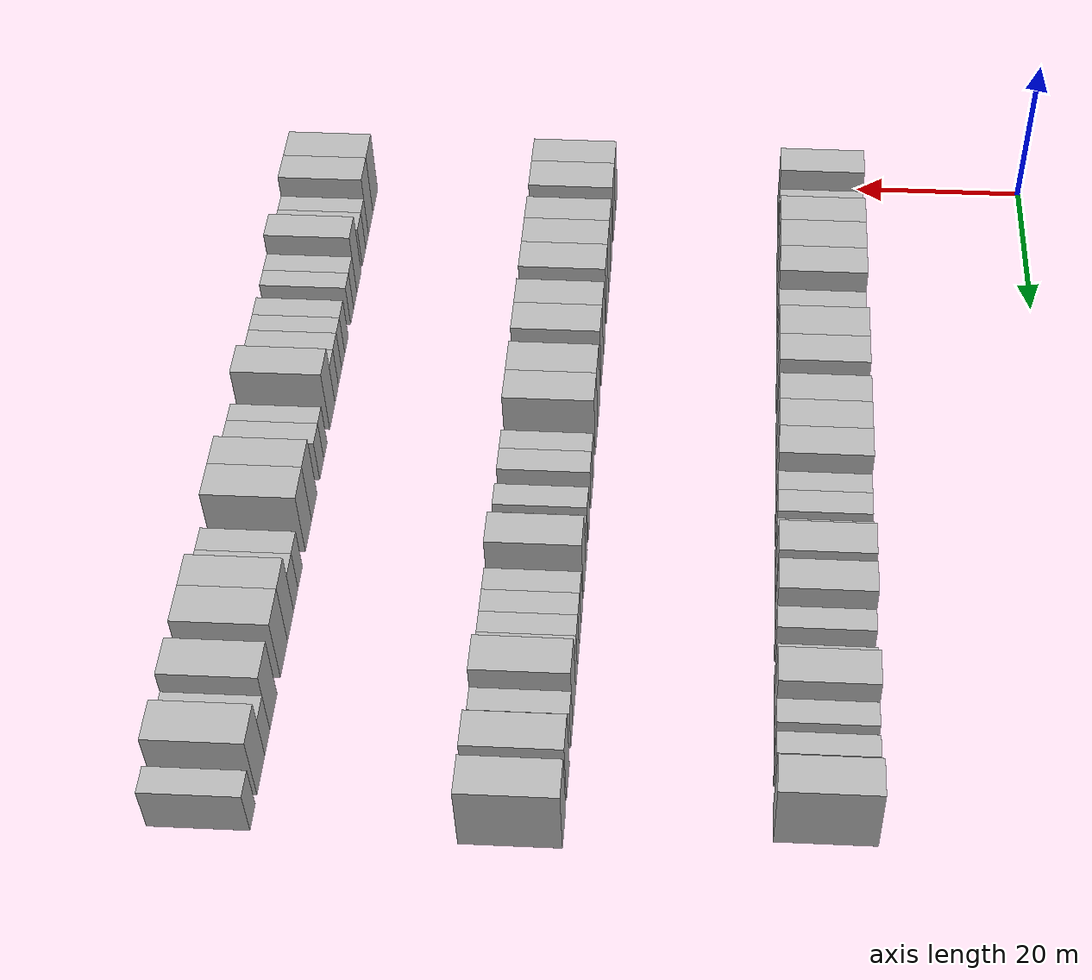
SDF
<sdf version="1.6">
 <world name="default">
  <model name="building_77">
   <static>1</static>
   <pose>25.0000 5.0600 0 0.000000 0.000000 0.000000</pose>
   <link name="link">
    <pose>0 0 4.50 0 0 0</pose>
    <collision name="collision"><geometry><box><size>10.0000 4.0116 9.0000</size></box></geometry></collision>
    <visual name="visual">
     <cast_shadows>0</cast_shadows>
     <geometry><box><size>10.0000 4.0116 9.0000</size></box></geometry>
     <material>
      <script>
       <uri>model://HANNAS_wall/materials/scripts</uri>
       <uri>model://HANNAS_wall/materials/textures</uri>
       <name>vrc/HANNAS_wall</name>
      </script>
     </material>
    </visual>
   </link>
  </model>
  <model name="building_78">
   <static>1</static>
   <pose>25.0000 8.3149 0 0.000000 0.000000 0.000000</pose>
   <link name="link">
    <pose>0 0 3.00 0 0 0</pose>
    <collision name="collision"><geometry><box><size>10.0000 2.4982 6.0000</size></box></geometry></collision>
    <visual name="visual">
     <cast_shadows>0</cast_shadows>
     <geometry><box><size>10.0000 2.4982 6.0000</size></box></geometry>
     <material>
      <script>
       <uri>model://HANNAS_wall/materials/scripts</uri>
       <uri>model://HANNAS_wall/materials/textures</uri>
       <name>vrc/HANNAS_wall</name>
      </script>
     </material>
    </visual>
   </link>
  </model>
  <model name="building_79">
   <static>1</static>
   <pose>25.0000 13.5983 0 0.000000 0.000000 0.000000</pose>
   <link name="link">
    <pose>0 0 4.50 0 0 0</pose>
    <collision name="collision"><geometry><box><size>10.0000 4.0687 9.0000</size></box></geometry></collision>
    <visual name="visual">
     <cast_shadows>0</cast_shadows>
     <geometry><box><size>10.0000 4.0687 9.0000</size></box></geometry>
     <material>
      <script>
       <uri>model://HANNAS_wall/materials/scripts</uri>
       <uri>model://HANNAS_wall/materials/textures</uri>
       <name>vrc/HANNAS_wall</name>
      </script>
     </material>
    </visual>
   </link>
  </model>
  <model name="building_80">
   <static>1</static>
   <pose>25.0000 17.8358 0 0.000000 0.000000 0.000000</pose>
   <link name="link">
    <pose>0 0 4.50 0 0 0</pose>
    <collision name="collision"><geometry><box><size>10.0000 4.4063 9.0000</size></box></geometry></collision>
    <visual name="visual">
     <cast_shadows>0</cast_shadows>
     <geometry><box><size>10.0000 4.4063 9.0000</size></box></geometry>
     <material>
      <script>
       <uri>model://HANNAS_wall/materials/scripts</uri>
       <uri>model://HANNAS_wall/materials/textures</uri>
       <name>vrc/HANNAS_wall</name>
      </script>
     </material>
    </visual>
   </link>
  </model>
  <model name="building_81">
   <static>1</static>
   <pose>25.0000 22.1220 0 0.000000 0.000000 0.000000</pose>
   <link name="link">
    <pose>0 0 4.50 0 0 0</pose>
    <collision name="collision"><geometry><box><size>10.0000 4.1660 9.0000</size></box></geometry></collision>
    <visual name="visual">
     <cast_shadows>0</cast_shadows>
     <geometry><box><size>10.0000 4.1660 9.0000</size></box></geometry>
     <material>
      <script>
       <uri>model://HANNAS_wall/materials/scripts</uri>
       <uri>model://HANNAS_wall/materials/textures</uri>
       <name>vrc/HANNAS_wall</name>
      </script>
     </material>
    </visual>
   </link>
  </model>
  <model name="building_82">
   <static>1</static>
   <pose>25.0000 25.5349 0 0.000000 0.000000 0.000000</pose>
   <link name="link">
    <pose>0 0 3.00 0 0 0</pose>
    <collision name="collision"><geometry><box><size>10.0000 2.6600 6.0000</size></box></geometry></collision>
    <visual name="visual">
     <cast_shadows>0</cast_shadows>
     <geometry><box><size>10.0000 2.6600 6.0000</size></box></geometry>
     <material>
      <script>
       <uri>model://HANNAS_wall/materials/scripts</uri>
       <uri>model://HANNAS_wall/materials/textures</uri>
       <name>vrc/HANNAS_wall</name>
      </script>
     </material>
    </visual>
   </link>
  </model>
  <model name="building_83">
   <static>1</static>
   <pose>25.0000 28.3083 0 0.000000 0.000000 0.000000</pose>
   <link name="link">
    <pose>0 0 3.00 0 0 0</pose>
    <collision name="collision"><geometry><box><size>10.0000 2.8868 6.0000</size></box></geometry></collision>
    <visual name="visual">
     <cast_shadows>0</cast_shadows>
     <geometry><box><size>10.0000 2.8868 6.0000</size></box></geometry>
     <material>
      <script>
       <uri>model://HANNAS_wall/materials/scripts</uri>
       <uri>model://HANNAS_wall/materials/textures</uri>
       <name>vrc/HANNAS_wall</name>
      </script>
     </material>
    </visual>
   </link>
  </model>
  <model name="building_84">
   <static>1</static>
   <pose>25.0000 31.9678 0 0.000000 0.000000 0.000000</pose>
   <link name="link">
    <pose>0 0 4.50 0 0 0</pose>
    <collision name="collision"><geometry><box><size>10.0000 4.4322 9.0000</size></box></geometry></collision>
    <visual name="visual">
     <cast_shadows>0</cast_shadows>
     <geometry><box><size>10.0000 4.4322 9.0000</size></box></geometry>
     <material>
      <script>
       <uri>model://HANNAS_wall/materials/scripts</uri>
       <uri>model://HANNAS_wall/materials/textures</uri>
       <name>vrc/HANNAS_wall</name>
      </script>
     </material>
    </visual>
   </link>
  </model>
  <model name="building_85">
   <static>1</static>
   <pose>25.0000 36.1779 0 0.000000 0.000000 0.000000</pose>
   <link name="link">
    <pose>0 0 4.50 0 0 0</pose>
    <collision name="collision"><geometry><box><size>10.0000 3.9880 9.0000</size></box></geometry></collision>
    <visual name="visual">
     <cast_shadows>0</cast_shadows>
     <geometry><box><size>10.0000 3.9880 9.0000</size></box></geometry>
     <material>
      <script>
       <uri>model://HANNAS_wall/materials/scripts</uri>
       <uri>model://HANNAS_wall/materials/textures</uri>
       <name>vrc/HANNAS_wall</name>
      </script>
     </material>
    </visual>
   </link>
  </model>
  <model name="building_86">
   <static>1</static>
   <pose>25.0000 42.0599 0 0.000000 0.000000 0.000000</pose>
   <link name="link">
    <pose>0 0 4.50 0 0 0</pose>
    <collision name="collision"><geometry><box><size>10.0000 3.7759 9.0000</size></box></geometry></collision>
    <visual name="visual">
     <cast_shadows>0</cast_shadows>
     <geometry><box><size>10.0000 3.7759 9.0000</size></box></geometry>
     <material>
      <script>
       <uri>model://HANNAS_wall/materials/scripts</uri>
       <uri>model://HANNAS_wall/materials/textures</uri>
       <name>vrc/HANNAS_wall</name>
      </script>
     </material>
    </visual>
   </link>
  </model>
  <model name="building_87">
   <static>1</static>
   <pose>25.0000 45.8835 0 0.000000 0.000000 0.000000</pose>
   <link name="link">
    <pose>0 0 4.50 0 0 0</pose>
    <collision name="collision"><geometry><box><size>10.0000 3.8713 9.0000</size></box></geometry></collision>
    <visual name="visual">
     <cast_shadows>0</cast_shadows>
     <geometry><box><size>10.0000 3.8713 9.0000</size></box></geometry>
     <material>
      <script>
       <uri>model://HANNAS_wall/materials/scripts</uri>
       <uri>model://HANNAS_wall/materials/textures</uri>
       <name>vrc/HANNAS_wall</name>
      </script>
     </material>
    </visual>
   </link>
  </model>
  <model name="building_88">
   <static>1</static>
   <pose>25.0000 49.7420 0 0.000000 0.000000 0.000000</pose>
   <link name="link">
    <pose>0 0 4.50 0 0 0</pose>
    <collision name="collision"><geometry><box><size>10.0000 3.8457 9.0000</size></box></geometry></collision>
    <visual name="visual">
     <cast_shadows>0</cast_shadows>
     <geometry><box><size>10.0000 3.8457 9.0000</size></box></geometry>
     <material>
      <script>
       <uri>model://HANNAS_wall/materials/scripts</uri>
       <uri>model://HANNAS_wall/materials/textures</uri>
       <name>vrc/HANNAS_wall</name>
      </script>
     </material>
    </visual>
   </link>
  </model>
  <model name="building_89">
   <static>1</static>
   <pose>25.0000 52.9456 0 0.000000 0.000000 0.000000</pose>
   <link name="link">
    <pose>0 0 3.00 0 0 0</pose>
    <collision name="collision"><geometry><box><size>10.0000 2.5616 6.0000</size></box></geometry></collision>
    <visual name="visual">
     <cast_shadows>0</cast_shadows>
     <geometry><box><size>10.0000 2.5616 6.0000</size></box></geometry>
     <material>
      <script>
       <uri>model://HANNAS_wall/materials/scripts</uri>
       <uri>model://HANNAS_wall/materials/textures</uri>
       <name>vrc/HANNAS_wall</name>
      </script>
     </material>
    </visual>
   </link>
  </model>
  <model name="building_90">
   <static>1</static>
   <pose>25.0000 55.6881 0 0.000000 0.000000 0.000000</pose>
   <link name="link">
    <pose>0 0 3.00 0 0 0</pose>
    <collision name="collision"><geometry><box><size>10.0000 2.9235 6.0000</size></box></geometry></collision>
    <visual name="visual">
     <cast_shadows>0</cast_shadows>
     <geometry><box><size>10.0000 2.9235 6.0000</size></box></geometry>
     <material>
      <script>
       <uri>model://HANNAS_wall/materials/scripts</uri>
       <uri>model://HANNAS_wall/materials/textures</uri>
       <name>vrc/HANNAS_wall</name>
      </script>
     </material>
    </visual>
   </link>
  </model>
  <model name="building_91">
   <static>1</static>
   <pose>25.0000 59.4676 0 0.000000 0.000000 0.000000</pose>
   <link name="link">
    <pose>0 0 3.00 0 0 0</pose>
    <collision name="collision"><geometry><box><size>10.0000 2.6355 6.0000</size></box></geometry></collision>
    <visual name="visual">
     <cast_shadows>0</cast_shadows>
     <geometry><box><size>10.0000 2.6355 6.0000</size></box></geometry>
     <material>
      <script>
       <uri>model://HANNAS_wall/materials/scripts</uri>
       <uri>model://HANNAS_wall/materials/textures</uri>
       <name>vrc/HANNAS_wall</name>
      </script>
     </material>
    </visual>
   </link>
  </model>
  <model name="building_92">
   <static>1</static>
   <pose>25.0000 62.7281 0 0.000000 0.000000 0.000000</pose>
   <link name="link">
    <pose>0 0 4.50 0 0 0</pose>
    <collision name="collision"><geometry><box><size>10.0000 3.8855 9.0000</size></box></geometry></collision>
    <visual name="visual">
     <cast_shadows>0</cast_shadows>
     <geometry><box><size>10.0000 3.8855 9.0000</size></box></geometry>
     <material>
      <script>
       <uri>model://HANNAS_wall/materials/scripts</uri>
       <uri>model://HANNAS_wall/materials/textures</uri>
       <name>vrc/HANNAS_wall</name>
      </script>
     </material>
    </visual>
   </link>
  </model>
  <model name="building_93">
   <static>1</static>
   <pose>25.0000 67.5539 0 0.000000 0.000000 0.000000</pose>
   <link name="link">
    <pose>0 0 4.50 0 0 0</pose>
    <collision name="collision"><geometry><box><size>10.0000 3.7661 9.0000</size></box></geometry></collision>
    <visual name="visual">
     <cast_shadows>0</cast_shadows>
     <geometry><box><size>10.0000 3.7661 9.0000</size></box></geometry>
     <material>
      <script>
       <uri>model://HANNAS_wall/materials/scripts</uri>
       <uri>model://HANNAS_wall/materials/textures</uri>
       <name>vrc/HANNAS_wall</name>
      </script>
     </material>
    </visual>
   </link>
  </model>
  <model name="building_94">
   <static>1</static>
   <pose>25.0000 70.7635 0 0.000000 0.000000 0.000000</pose>
   <link name="link">
    <pose>0 0 3.00 0 0 0</pose>
    <collision name="collision"><geometry><box><size>10.0000 2.6532 6.0000</size></box></geometry></collision>
    <visual name="visual">
     <cast_shadows>0</cast_shadows>
     <geometry><box><size>10.0000 2.6532 6.0000</size></box></geometry>
     <material>
      <script>
       <uri>model://HANNAS_wall/materials/scripts</uri>
       <uri>model://HANNAS_wall/materials/textures</uri>
       <name>vrc/HANNAS_wall</name>
      </script>
     </material>
    </visual>
   </link>
  </model>
  <model name="building_95">
   <static>1</static>
   <pose>25.0000 75.3304 0 0.000000 0.000000 0.000000</pose>
   <link name="link">
    <pose>0 0 3.00 0 0 0</pose>
    <collision name="collision"><geometry><box><size>10.0000 2.4804 6.0000</size></box></geometry></collision>
    <visual name="visual">
     <cast_shadows>0</cast_shadows>
     <geometry><box><size>10.0000 2.4804 6.0000</size></box></geometry>
     <material>
      <script>
       <uri>model://HANNAS_wall/materials/scripts</uri>
       <uri>model://HANNAS_wall/materials/textures</uri>
       <name>vrc/HANNAS_wall</name>
      </script>
     </material>
    </visual>
   </link>
  </model>
  <model name="building_96">
   <static>1</static>
   <pose>25.0000 78.5699 0 0.000000 0.000000 0.000000</pose>
   <link name="link">
    <pose>0 0 4.50 0 0 0</pose>
    <collision name="collision"><geometry><box><size>10.0000 3.9987 9.0000</size></box></geometry></collision>
    <visual name="visual">
     <cast_shadows>0</cast_shadows>
     <geometry><box><size>10.0000 3.9987 9.0000</size></box></geometry>
     <material>
      <script>
       <uri>model://HANNAS_wall/materials/scripts</uri>
       <uri>model://HANNAS_wall/materials/textures</uri>
       <name>vrc/HANNAS_wall</name>
      </script>
     </material>
    </visual>
   </link>
  </model>
  <model name="building_97">
   <static>1</static>
   <pose>25.0000 81.9426 0 0.000000 0.000000 0.000000</pose>
   <link name="link">
    <pose>0 0 3.00 0 0 0</pose>
    <collision name="collision"><geometry><box><size>10.0000 2.7467 6.0000</size></box></geometry></collision>
    <visual name="visual">
     <cast_shadows>0</cast_shadows>
     <geometry><box><size>10.0000 2.7467 6.0000</size></box></geometry>
     <material>
      <script>
       <uri>model://HANNAS_wall/materials/scripts</uri>
       <uri>model://HANNAS_wall/materials/textures</uri>
       <name>vrc/HANNAS_wall</name>
      </script>
     </material>
    </visual>
   </link>
  </model>
  <model name="building_98">
   <static>1</static>
   <pose>25.0000 85.5604 0 0.000000 0.000000 0.000000</pose>
   <link name="link">
    <pose>0 0 3.00 0 0 0</pose>
    <collision name="collision"><geometry><box><size>10.0000 2.4888 6.0000</size></box></geometry></collision>
    <visual name="visual">
     <cast_shadows>0</cast_shadows>
     <geometry><box><size>10.0000 2.4888 6.0000</size></box></geometry>
     <material>
      <script>
       <uri>model://HANNAS_wall/materials/scripts</uri>
       <uri>model://HANNAS_wall/materials/textures</uri>
       <name>vrc/HANNAS_wall</name>
      </script>
     </material>
    </visual>
   </link>
  </model>
  <model name="building_99">
   <static>1</static>
   <pose>25.0000 90.8508 0 0.000000 0.000000 0.000000</pose>
   <link name="link">
    <pose>0 0 4.50 0 0 0</pose>
    <collision name="collision"><geometry><box><size>10.0000 4.0921 9.0000</size></box></geometry></collision>
    <visual name="visual">
     <cast_shadows>0</cast_shadows>
     <geometry><box><size>10.0000 4.0921 9.0000</size></box></geometry>
     <material>
      <script>
       <uri>model://HANNAS_wall/materials/scripts</uri>
       <uri>model://HANNAS_wall/materials/textures</uri>
       <name>vrc/HANNAS_wall</name>
      </script>
     </material>
    </visual>
   </link>
  </model>
  <model name="building_206">
   <static>1</static>
   <pose>55.0000 4.7831 0 0.000000 0.000000 0.000000</pose>
   <link name="link">
    <pose>0 0 4.50 0 0 0</pose>
    <collision name="collision"><geometry><box><size>10.0000 3.9610 9.0000</size></box></geometry></collision>
    <visual name="visual">
     <cast_shadows>0</cast_shadows>
     <geometry><box><size>10.0000 3.9610 9.0000</size></box></geometry>
     <material>
      <script>
       <uri>model://HANNAS_wall/materials/scripts</uri>
       <uri>model://HANNAS_wall/materials/textures</uri>
       <name>vrc/HANNAS_wall</name>
      </script>
     </material>
    </visual>
   </link>
  </model>
  <model name="building_207">
   <static>1</static>
   <pose>55.0000 8.9748 0 0.000000 0.000000 0.000000</pose>
   <link name="link">
    <pose>0 0 4.50 0 0 0</pose>
    <collision name="collision"><geometry><box><size>10.0000 4.4224 9.0000</size></box></geometry></collision>
    <visual name="visual">
     <cast_shadows>0</cast_shadows>
     <geometry><box><size>10.0000 4.4224 9.0000</size></box></geometry>
     <material>
      <script>
       <uri>model://HANNAS_wall/materials/scripts</uri>
       <uri>model://HANNAS_wall/materials/textures</uri>
       <name>vrc/HANNAS_wall</name>
      </script>
     </material>
    </visual>
   </link>
  </model>
  <model name="building_208">
   <static>1</static>
   <pose>55.0000 15.0215 0 0.000000 0.000000 0.000000</pose>
   <link name="link">
    <pose>0 0 4.50 0 0 0</pose>
    <collision name="collision"><geometry><box><size>10.0000 3.6709 9.0000</size></box></geometry></collision>
    <visual name="visual">
     <cast_shadows>0</cast_shadows>
     <geometry><box><size>10.0000 3.6709 9.0000</size></box></geometry>
     <material>
      <script>
       <uri>model://HANNAS_wall/materials/scripts</uri>
       <uri>model://HANNAS_wall/materials/textures</uri>
       <name>vrc/HANNAS_wall</name>
      </script>
     </material>
    </visual>
   </link>
  </model>
  <model name="building_209">
   <static>1</static>
   <pose>55.0000 18.8750 0 0.000000 0.000000 0.000000</pose>
   <link name="link">
    <pose>0 0 4.50 0 0 0</pose>
    <collision name="collision"><geometry><box><size>10.0000 4.0361 9.0000</size></box></geometry></collision>
    <visual name="visual">
     <cast_shadows>0</cast_shadows>
     <geometry><box><size>10.0000 4.0361 9.0000</size></box></geometry>
     <material>
      <script>
       <uri>model://HANNAS_wall/materials/scripts</uri>
       <uri>model://HANNAS_wall/materials/textures</uri>
       <name>vrc/HANNAS_wall</name>
      </script>
     </material>
    </visual>
   </link>
  </model>
  <model name="building_210">
   <static>1</static>
   <pose>55.0000 22.9691 0 0.000000 0.000000 0.000000</pose>
   <link name="link">
    <pose>0 0 4.50 0 0 0</pose>
    <collision name="collision"><geometry><box><size>10.0000 4.1520 9.0000</size></box></geometry></collision>
    <visual name="visual">
     <cast_shadows>0</cast_shadows>
     <geometry><box><size>10.0000 4.1520 9.0000</size></box></geometry>
     <material>
      <script>
       <uri>model://HANNAS_wall/materials/scripts</uri>
       <uri>model://HANNAS_wall/materials/textures</uri>
       <name>vrc/HANNAS_wall</name>
      </script>
     </material>
    </visual>
   </link>
  </model>
  <model name="building_211">
   <static>1</static>
   <pose>55.0000 28.9196 0 0.000000 0.000000 0.000000</pose>
   <link name="link">
    <pose>0 0 4.50 0 0 0</pose>
    <collision name="collision"><geometry><box><size>10.0000 3.7491 9.0000</size></box></geometry></collision>
    <visual name="visual">
     <cast_shadows>0</cast_shadows>
     <geometry><box><size>10.0000 3.7491 9.0000</size></box></geometry>
     <material>
      <script>
       <uri>model://HANNAS_wall/materials/scripts</uri>
       <uri>model://HANNAS_wall/materials/textures</uri>
       <name>vrc/HANNAS_wall</name>
      </script>
     </material>
    </visual>
   </link>
  </model>
  <model name="building_212">
   <static>1</static>
   <pose>55.0000 32.8560 0 0.000000 0.000000 0.000000</pose>
   <link name="link">
    <pose>0 0 4.50 0 0 0</pose>
    <collision name="collision"><geometry><box><size>10.0000 4.1237 9.0000</size></box></geometry></collision>
    <visual name="visual">
     <cast_shadows>0</cast_shadows>
     <geometry><box><size>10.0000 4.1237 9.0000</size></box></geometry>
     <material>
      <script>
       <uri>model://HANNAS_wall/materials/scripts</uri>
       <uri>model://HANNAS_wall/materials/textures</uri>
       <name>vrc/HANNAS_wall</name>
      </script>
     </material>
    </visual>
   </link>
  </model>
  <model name="building_213">
   <static>1</static>
   <pose>55.0000 39.0620 0 0.000000 0.000000 0.000000</pose>
   <link name="link">
    <pose>0 0 4.50 0 0 0</pose>
    <collision name="collision"><geometry><box><size>10.0000 4.2882 9.0000</size></box></geometry></collision>
    <visual name="visual">
     <cast_shadows>0</cast_shadows>
     <geometry><box><size>10.0000 4.2882 9.0000</size></box></geometry>
     <material>
      <script>
       <uri>model://HANNAS_wall/materials/scripts</uri>
       <uri>model://HANNAS_wall/materials/textures</uri>
       <name>vrc/HANNAS_wall</name>
      </script>
     </material>
    </visual>
   </link>
  </model>
  <model name="building_214">
   <static>1</static>
   <pose>55.0000 43.2771 0 0.000000 0.000000 0.000000</pose>
   <link name="link">
    <pose>0 0 4.50 0 0 0</pose>
    <collision name="collision"><geometry><box><size>10.0000 4.1421 9.0000</size></box></geometry></collision>
    <visual name="visual">
     <cast_shadows>0</cast_shadows>
     <geometry><box><size>10.0000 4.1421 9.0000</size></box></geometry>
     <material>
      <script>
       <uri>model://HANNAS_wall/materials/scripts</uri>
       <uri>model://HANNAS_wall/materials/textures</uri>
       <name>vrc/HANNAS_wall</name>
      </script>
     </material>
    </visual>
   </link>
  </model>
  <model name="building_215">
   <static>1</static>
   <pose>55.0000 48.6438 0 0.000000 0.000000 0.000000</pose>
   <link name="link">
    <pose>0 0 3.00 0 0 0</pose>
    <collision name="collision"><geometry><box><size>10.0000 2.5912 6.0000</size></box></geometry></collision>
    <visual name="visual">
     <cast_shadows>0</cast_shadows>
     <geometry><box><size>10.0000 2.5912 6.0000</size></box></geometry>
     <material>
      <script>
       <uri>model://HANNAS_wall/materials/scripts</uri>
       <uri>model://HANNAS_wall/materials/textures</uri>
       <name>vrc/HANNAS_wall</name>
      </script>
     </material>
    </visual>
   </link>
  </model>
  <model name="building_216">
   <static>1</static>
   <pose>55.0000 51.4256 0 0.000000 0.000000 0.000000</pose>
   <link name="link">
    <pose>0 0 3.00 0 0 0</pose>
    <collision name="collision"><geometry><box><size>10.0000 2.9724 6.0000</size></box></geometry></collision>
    <visual name="visual">
     <cast_shadows>0</cast_shadows>
     <geometry><box><size>10.0000 2.9724 6.0000</size></box></geometry>
     <material>
      <script>
       <uri>model://HANNAS_wall/materials/scripts</uri>
       <uri>model://HANNAS_wall/materials/textures</uri>
       <name>vrc/HANNAS_wall</name>
      </script>
     </material>
    </visual>
   </link>
  </model>
  <model name="building_217">
   <static>1</static>
   <pose>55.0000 56.3287 0 0.000000 0.000000 0.000000</pose>
   <link name="link">
    <pose>0 0 3.00 0 0 0</pose>
    <collision name="collision"><geometry><box><size>10.0000 2.8339 6.0000</size></box></geometry></collision>
    <visual name="visual">
     <cast_shadows>0</cast_shadows>
     <geometry><box><size>10.0000 2.8339 6.0000</size></box></geometry>
     <material>
      <script>
       <uri>model://HANNAS_wall/materials/scripts</uri>
       <uri>model://HANNAS_wall/materials/textures</uri>
       <name>vrc/HANNAS_wall</name>
      </script>
     </material>
    </visual>
   </link>
  </model>
  <model name="building_218">
   <static>1</static>
   <pose>55.0000 59.9752 0 0.000000 0.000000 0.000000</pose>
   <link name="link">
    <pose>0 0 3.00 0 0 0</pose>
    <collision name="collision"><geometry><box><size>10.0000 2.4591 6.0000</size></box></geometry></collision>
    <visual name="visual">
     <cast_shadows>0</cast_shadows>
     <geometry><box><size>10.0000 2.4591 6.0000</size></box></geometry>
     <material>
      <script>
       <uri>model://HANNAS_wall/materials/scripts</uri>
       <uri>model://HANNAS_wall/materials/textures</uri>
       <name>vrc/HANNAS_wall</name>
      </script>
     </material>
    </visual>
   </link>
  </model>
  <model name="building_219">
   <static>1</static>
   <pose>55.0000 63.1700 0 0.000000 0.000000 0.000000</pose>
   <link name="link">
    <pose>0 0 4.50 0 0 0</pose>
    <collision name="collision"><geometry><box><size>10.0000 3.9306 9.0000</size></box></geometry></collision>
    <visual name="visual">
     <cast_shadows>0</cast_shadows>
     <geometry><box><size>10.0000 3.9306 9.0000</size></box></geometry>
     <material>
      <script>
       <uri>model://HANNAS_wall/materials/scripts</uri>
       <uri>model://HANNAS_wall/materials/textures</uri>
       <name>vrc/HANNAS_wall</name>
      </script>
     </material>
    </visual>
   </link>
  </model>
  <model name="building_220">
   <static>1</static>
   <pose>55.0000 67.4924 0 0.000000 0.000000 0.000000</pose>
   <link name="link">
    <pose>0 0 3.00 0 0 0</pose>
    <collision name="collision"><geometry><box><size>10.0000 2.7140 6.0000</size></box></geometry></collision>
    <visual name="visual">
     <cast_shadows>0</cast_shadows>
     <geometry><box><size>10.0000 2.7140 6.0000</size></box></geometry>
     <material>
      <script>
       <uri>model://HANNAS_wall/materials/scripts</uri>
       <uri>model://HANNAS_wall/materials/textures</uri>
       <name>vrc/HANNAS_wall</name>
      </script>
     </material>
    </visual>
   </link>
  </model>
  <model name="building_221">
   <static>1</static>
   <pose>55.0000 70.2208 0 0.000000 0.000000 0.000000</pose>
   <link name="link">
    <pose>0 0 3.00 0 0 0</pose>
    <collision name="collision"><geometry><box><size>10.0000 2.7429 6.0000</size></box></geometry></collision>
    <visual name="visual">
     <cast_shadows>0</cast_shadows>
     <geometry><box><size>10.0000 2.7429 6.0000</size></box></geometry>
     <material>
      <script>
       <uri>model://HANNAS_wall/materials/scripts</uri>
       <uri>model://HANNAS_wall/materials/textures</uri>
       <name>vrc/HANNAS_wall</name>
      </script>
     </material>
    </visual>
   </link>
  </model>
  <model name="building_222">
   <static>1</static>
   <pose>55.0000 72.8770 0 0.000000 0.000000 0.000000</pose>
   <link name="link">
    <pose>0 0 3.00 0 0 0</pose>
    <collision name="collision"><geometry><box><size>10.0000 2.5695 6.0000</size></box></geometry></collision>
    <visual name="visual">
     <cast_shadows>0</cast_shadows>
     <geometry><box><size>10.0000 2.5695 6.0000</size></box></geometry>
     <material>
      <script>
       <uri>model://HANNAS_wall/materials/scripts</uri>
       <uri>model://HANNAS_wall/materials/textures</uri>
       <name>vrc/HANNAS_wall</name>
      </script>
     </material>
    </visual>
   </link>
  </model>
  <model name="building_223">
   <static>1</static>
   <pose>55.0000 75.4095 0 0.000000 0.000000 0.000000</pose>
   <link name="link">
    <pose>0 0 3.00 0 0 0</pose>
    <collision name="collision"><geometry><box><size>10.0000 2.4956 6.0000</size></box></geometry></collision>
    <visual name="visual">
     <cast_shadows>0</cast_shadows>
     <geometry><box><size>10.0000 2.4956 6.0000</size></box></geometry>
     <material>
      <script>
       <uri>model://HANNAS_wall/materials/scripts</uri>
       <uri>model://HANNAS_wall/materials/textures</uri>
       <name>vrc/HANNAS_wall</name>
      </script>
     </material>
    </visual>
   </link>
  </model>
  <model name="building_224">
   <static>1</static>
   <pose>55.0000 78.7159 0 0.000000 0.000000 0.000000</pose>
   <link name="link">
    <pose>0 0 4.50 0 0 0</pose>
    <collision name="collision"><geometry><box><size>10.0000 4.1172 9.0000</size></box></geometry></collision>
    <visual name="visual">
     <cast_shadows>0</cast_shadows>
     <geometry><box><size>10.0000 4.1172 9.0000</size></box></geometry>
     <material>
      <script>
       <uri>model://HANNAS_wall/materials/scripts</uri>
       <uri>model://HANNAS_wall/materials/textures</uri>
       <name>vrc/HANNAS_wall</name>
      </script>
     </material>
    </visual>
   </link>
  </model>
  <model name="building_225">
   <static>1</static>
   <pose>55.0000 82.0892 0 0.000000 0.000000 0.000000</pose>
   <link name="link">
    <pose>0 0 3.00 0 0 0</pose>
    <collision name="collision"><geometry><box><size>10.0000 2.6294 6.0000</size></box></geometry></collision>
    <visual name="visual">
     <cast_shadows>0</cast_shadows>
     <geometry><box><size>10.0000 2.6294 6.0000</size></box></geometry>
     <material>
      <script>
       <uri>model://HANNAS_wall/materials/scripts</uri>
       <uri>model://HANNAS_wall/materials/textures</uri>
       <name>vrc/HANNAS_wall</name>
      </script>
     </material>
    </visual>
   </link>
  </model>
  <model name="building_226">
   <static>1</static>
   <pose>55.0000 87.3890 0 0.000000 0.000000 0.000000</pose>
   <link name="link">
    <pose>0 0 4.50 0 0 0</pose>
    <collision name="collision"><geometry><box><size>10.0000 3.9702 9.0000</size></box></geometry></collision>
    <visual name="visual">
     <cast_shadows>0</cast_shadows>
     <geometry><box><size>10.0000 3.9702 9.0000</size></box></geometry>
     <material>
      <script>
       <uri>model://HANNAS_wall/materials/scripts</uri>
       <uri>model://HANNAS_wall/materials/textures</uri>
       <name>vrc/HANNAS_wall</name>
      </script>
     </material>
    </visual>
   </link>
  </model>
  <model name="building_227">
   <static>1</static>
   <pose>55.0000 92.4750 0 0.000000 0.000000 0.000000</pose>
   <link name="link">
    <pose>0 0 4.50 0 0 0</pose>
    <collision name="collision"><geometry><box><size>10.0000 4.2018 9.0000</size></box></geometry></collision>
    <visual name="visual">
     <cast_shadows>0</cast_shadows>
     <geometry><box><size>10.0000 4.2018 9.0000</size></box></geometry>
     <material>
      <script>
       <uri>model://HANNAS_wall/materials/scripts</uri>
       <uri>model://HANNAS_wall/materials/textures</uri>
       <name>vrc/HANNAS_wall</name>
      </script>
     </material>
    </visual>
   </link>
  </model>
  <model name="building_349">
   <static>1</static>
   <pose>85.0000 5.1206 0 0.000000 0.000000 0.000000</pose>
   <link name="link">
    <pose>0 0 4.50 0 0 0</pose>
    <collision name="collision"><geometry><box><size>10.0000 4.3252 9.0000</size></box></geometry></collision>
    <visual name="visual">
     <cast_shadows>0</cast_shadows>
     <geometry><box><size>10.0000 4.3252 9.0000</size></box></geometry>
     <material>
      <script>
       <uri>model://HANNAS_wall/materials/scripts</uri>
       <uri>model://HANNAS_wall/materials/textures</uri>
       <name>vrc/HANNAS_wall</name>
      </script>
     </material>
    </visual>
   </link>
  </model>
  <model name="building_350">
   <static>1</static>
   <pose>85.0000 9.2916 0 0.000000 0.000000 0.000000</pose>
   <link name="link">
    <pose>0 0 4.50 0 0 0</pose>
    <collision name="collision"><geometry><box><size>10.0000 4.0169 9.0000</size></box></geometry></collision>
    <visual name="visual">
     <cast_shadows>0</cast_shadows>
     <geometry><box><size>10.0000 4.0169 9.0000</size></box></geometry>
     <material>
      <script>
       <uri>model://HANNAS_wall/materials/scripts</uri>
       <uri>model://HANNAS_wall/materials/textures</uri>
       <name>vrc/HANNAS_wall</name>
      </script>
     </material>
    </visual>
   </link>
  </model>
  <model name="building_351">
   <static>1</static>
   <pose>85.0000 12.5135 0 0.000000 0.000000 0.000000</pose>
   <link name="link">
    <pose>0 0 3.00 0 0 0</pose>
    <collision name="collision"><geometry><box><size>10.0000 2.4269 6.0000</size></box></geometry></collision>
    <visual name="visual">
     <cast_shadows>0</cast_shadows>
     <geometry><box><size>10.0000 2.4269 6.0000</size></box></geometry>
     <material>
      <script>
       <uri>model://HANNAS_wall/materials/scripts</uri>
       <uri>model://HANNAS_wall/materials/textures</uri>
       <name>vrc/HANNAS_wall</name>
      </script>
     </material>
    </visual>
   </link>
  </model>
  <model name="building_352">
   <static>1</static>
   <pose>85.0000 15.2236 0 0.000000 0.000000 0.000000</pose>
   <link name="link">
    <pose>0 0 3.00 0 0 0</pose>
    <collision name="collision"><geometry><box><size>10.0000 2.9933 6.0000</size></box></geometry></collision>
    <visual name="visual">
     <cast_shadows>0</cast_shadows>
     <geometry><box><size>10.0000 2.9933 6.0000</size></box></geometry>
     <material>
      <script>
       <uri>model://HANNAS_wall/materials/scripts</uri>
       <uri>model://HANNAS_wall/materials/textures</uri>
       <name>vrc/HANNAS_wall</name>
      </script>
     </material>
    </visual>
   </link>
  </model>
  <model name="building_353">
   <static>1</static>
   <pose>85.0000 19.5375 0 0.000000 0.000000 0.000000</pose>
   <link name="link">
    <pose>0 0 4.50 0 0 0</pose>
    <collision name="collision"><geometry><box><size>10.0000 3.6345 9.0000</size></box></geometry></collision>
    <visual name="visual">
     <cast_shadows>0</cast_shadows>
     <geometry><box><size>10.0000 3.6345 9.0000</size></box></geometry>
     <material>
      <script>
       <uri>model://HANNAS_wall/materials/scripts</uri>
       <uri>model://HANNAS_wall/materials/textures</uri>
       <name>vrc/HANNAS_wall</name>
      </script>
     </material>
    </visual>
   </link>
  </model>
  <model name="building_354">
   <static>1</static>
   <pose>85.0000 22.7019 0 0.000000 0.000000 0.000000</pose>
   <link name="link">
    <pose>0 0 3.00 0 0 0</pose>
    <collision name="collision"><geometry><box><size>10.0000 2.6942 6.0000</size></box></geometry></collision>
    <visual name="visual">
     <cast_shadows>0</cast_shadows>
     <geometry><box><size>10.0000 2.6942 6.0000</size></box></geometry>
     <material>
      <script>
       <uri>model://HANNAS_wall/materials/scripts</uri>
       <uri>model://HANNAS_wall/materials/textures</uri>
       <name>vrc/HANNAS_wall</name>
      </script>
     </material>
    </visual>
   </link>
  </model>
  <model name="building_355">
   <static>1</static>
   <pose>85.0000 25.3081 0 0.000000 0.000000 0.000000</pose>
   <link name="link">
    <pose>0 0 3.00 0 0 0</pose>
    <collision name="collision"><geometry><box><size>10.0000 2.5182 6.0000</size></box></geometry></collision>
    <visual name="visual">
     <cast_shadows>0</cast_shadows>
     <geometry><box><size>10.0000 2.5182 6.0000</size></box></geometry>
     <material>
      <script>
       <uri>model://HANNAS_wall/materials/scripts</uri>
       <uri>model://HANNAS_wall/materials/textures</uri>
       <name>vrc/HANNAS_wall</name>
      </script>
     </material>
    </visual>
   </link>
  </model>
  <model name="building_356">
   <static>1</static>
   <pose>85.0000 29.9419 0 0.000000 0.000000 0.000000</pose>
   <link name="link">
    <pose>0 0 3.00 0 0 0</pose>
    <collision name="collision"><geometry><box><size>10.0000 2.7494 6.0000</size></box></geometry></collision>
    <visual name="visual">
     <cast_shadows>0</cast_shadows>
     <geometry><box><size>10.0000 2.7494 6.0000</size></box></geometry>
     <material>
      <script>
       <uri>model://HANNAS_wall/materials/scripts</uri>
       <uri>model://HANNAS_wall/materials/textures</uri>
       <name>vrc/HANNAS_wall</name>
      </script>
     </material>
    </visual>
   </link>
  </model>
  <model name="building_357">
   <static>1</static>
   <pose>85.0000 32.5377 0 0.000000 0.000000 0.000000</pose>
   <link name="link">
    <pose>0 0 3.00 0 0 0</pose>
    <collision name="collision"><geometry><box><size>10.0000 2.4423 6.0000</size></box></geometry></collision>
    <visual name="visual">
     <cast_shadows>0</cast_shadows>
     <geometry><box><size>10.0000 2.4423 6.0000</size></box></geometry>
     <material>
      <script>
       <uri>model://HANNAS_wall/materials/scripts</uri>
       <uri>model://HANNAS_wall/materials/textures</uri>
       <name>vrc/HANNAS_wall</name>
      </script>
     </material>
    </visual>
   </link>
  </model>
  <model name="building_358">
   <static>1</static>
   <pose>85.0000 35.0568 0 0.000000 0.000000 0.000000</pose>
   <link name="link">
    <pose>0 0 3.00 0 0 0</pose>
    <collision name="collision"><geometry><box><size>10.0000 2.5960 6.0000</size></box></geometry></collision>
    <visual name="visual">
     <cast_shadows>0</cast_shadows>
     <geometry><box><size>10.0000 2.5960 6.0000</size></box></geometry>
     <material>
      <script>
       <uri>model://HANNAS_wall/materials/scripts</uri>
       <uri>model://HANNAS_wall/materials/textures</uri>
       <name>vrc/HANNAS_wall</name>
      </script>
     </material>
    </visual>
   </link>
  </model>
  <model name="building_359">
   <static>1</static>
   <pose>85.0000 37.7054 0 0.000000 0.000000 0.000000</pose>
   <link name="link">
    <pose>0 0 3.00 0 0 0</pose>
    <collision name="collision"><geometry><box><size>10.0000 2.7012 6.0000</size></box></geometry></collision>
    <visual name="visual">
     <cast_shadows>0</cast_shadows>
     <geometry><box><size>10.0000 2.7012 6.0000</size></box></geometry>
     <material>
      <script>
       <uri>model://HANNAS_wall/materials/scripts</uri>
       <uri>model://HANNAS_wall/materials/textures</uri>
       <name>vrc/HANNAS_wall</name>
      </script>
     </material>
    </visual>
   </link>
  </model>
  <model name="building_360">
   <static>1</static>
   <pose>85.0000 41.0349 0 0.000000 0.000000 0.000000</pose>
   <link name="link">
    <pose>0 0 4.50 0 0 0</pose>
    <collision name="collision"><geometry><box><size>10.0000 3.9577 9.0000</size></box></geometry></collision>
    <visual name="visual">
     <cast_shadows>0</cast_shadows>
     <geometry><box><size>10.0000 3.9577 9.0000</size></box></geometry>
     <material>
      <script>
       <uri>model://HANNAS_wall/materials/scripts</uri>
       <uri>model://HANNAS_wall/materials/textures</uri>
       <name>vrc/HANNAS_wall</name>
      </script>
     </material>
    </visual>
   </link>
  </model>
  <model name="building_361">
   <static>1</static>
   <pose>85.0000 46.2153 0 0.000000 0.000000 0.000000</pose>
   <link name="link">
    <pose>0 0 3.00 0 0 0</pose>
    <collision name="collision"><geometry><box><size>10.0000 2.4030 6.0000</size></box></geometry></collision>
    <visual name="visual">
     <cast_shadows>0</cast_shadows>
     <geometry><box><size>10.0000 2.4030 6.0000</size></box></geometry>
     <material>
      <script>
       <uri>model://HANNAS_wall/materials/scripts</uri>
       <uri>model://HANNAS_wall/materials/textures</uri>
       <name>vrc/HANNAS_wall</name>
      </script>
     </material>
    </visual>
   </link>
  </model>
  <model name="building_362">
   <static>1</static>
   <pose>85.0000 48.8933 0 0.000000 0.000000 0.000000</pose>
   <link name="link">
    <pose>0 0 3.00 0 0 0</pose>
    <collision name="collision"><geometry><box><size>10.0000 2.9529 6.0000</size></box></geometry></collision>
    <visual name="visual">
     <cast_shadows>0</cast_shadows>
     <geometry><box><size>10.0000 2.9529 6.0000</size></box></geometry>
     <material>
      <script>
       <uri>model://HANNAS_wall/materials/scripts</uri>
       <uri>model://HANNAS_wall/materials/textures</uri>
       <name>vrc/HANNAS_wall</name>
      </script>
     </material>
    </visual>
   </link>
  </model>
  <model name="building_363">
   <static>1</static>
   <pose>85.0000 54.2603 0 0.000000 0.000000 0.000000</pose>
   <link name="link">
    <pose>0 0 4.50 0 0 0</pose>
    <collision name="collision"><geometry><box><size>10.0000 3.7810 9.0000</size></box></geometry></collision>
    <visual name="visual">
     <cast_shadows>0</cast_shadows>
     <geometry><box><size>10.0000 3.7810 9.0000</size></box></geometry>
     <material>
      <script>
       <uri>model://HANNAS_wall/materials/scripts</uri>
       <uri>model://HANNAS_wall/materials/textures</uri>
       <name>vrc/HANNAS_wall</name>
      </script>
     </material>
    </visual>
   </link>
  </model>
  <model name="building_364">
   <static>1</static>
   <pose>85.0000 58.2708 0 0.000000 0.000000 0.000000</pose>
   <link name="link">
    <pose>0 0 4.50 0 0 0</pose>
    <collision name="collision"><geometry><box><size>10.0000 4.2401 9.0000</size></box></geometry></collision>
    <visual name="visual">
     <cast_shadows>0</cast_shadows>
     <geometry><box><size>10.0000 4.2401 9.0000</size></box></geometry>
     <material>
      <script>
       <uri>model://HANNAS_wall/materials/scripts</uri>
       <uri>model://HANNAS_wall/materials/textures</uri>
       <name>vrc/HANNAS_wall</name>
      </script>
     </material>
    </visual>
   </link>
  </model>
  <model name="building_365">
   <static>1</static>
   <pose>85.0000 63.8419 0 0.000000 0.000000 0.000000</pose>
   <link name="link">
    <pose>0 0 3.00 0 0 0</pose>
    <collision name="collision"><geometry><box><size>10.0000 2.9021 6.0000</size></box></geometry></collision>
    <visual name="visual">
     <cast_shadows>0</cast_shadows>
     <geometry><box><size>10.0000 2.9021 6.0000</size></box></geometry>
     <material>
      <script>
       <uri>model://HANNAS_wall/materials/scripts</uri>
       <uri>model://HANNAS_wall/materials/textures</uri>
       <name>vrc/HANNAS_wall</name>
      </script>
     </material>
    </visual>
   </link>
  </model>
  <model name="building_366">
   <static>1</static>
   <pose>85.0000 66.7500 0 0.000000 0.000000 0.000000</pose>
   <link name="link">
    <pose>0 0 3.00 0 0 0</pose>
    <collision name="collision"><geometry><box><size>10.0000 2.9141 6.0000</size></box></geometry></collision>
    <visual name="visual">
     <cast_shadows>0</cast_shadows>
     <geometry><box><size>10.0000 2.9141 6.0000</size></box></geometry>
     <material>
      <script>
       <uri>model://HANNAS_wall/materials/scripts</uri>
       <uri>model://HANNAS_wall/materials/textures</uri>
       <name>vrc/HANNAS_wall</name>
      </script>
     </material>
    </visual>
   </link>
  </model>
  <model name="building_367">
   <static>1</static>
   <pose>85.0000 70.1325 0 0.000000 0.000000 0.000000</pose>
   <link name="link">
    <pose>0 0 4.50 0 0 0</pose>
    <collision name="collision"><geometry><box><size>10.0000 3.8509 9.0000</size></box></geometry></collision>
    <visual name="visual">
     <cast_shadows>0</cast_shadows>
     <geometry><box><size>10.0000 3.8509 9.0000</size></box></geometry>
     <material>
      <script>
       <uri>model://HANNAS_wall/materials/scripts</uri>
       <uri>model://HANNAS_wall/materials/textures</uri>
       <name>vrc/HANNAS_wall</name>
      </script>
     </material>
    </visual>
   </link>
  </model>
  <model name="building_368">
   <static>1</static>
   <pose>85.0000 74.2777 0 0.000000 0.000000 0.000000</pose>
   <link name="link">
    <pose>0 0 4.50 0 0 0</pose>
    <collision name="collision"><geometry><box><size>10.0000 4.4394 9.0000</size></box></geometry></collision>
    <visual name="visual">
     <cast_shadows>0</cast_shadows>
     <geometry><box><size>10.0000 4.4394 9.0000</size></box></geometry>
     <material>
      <script>
       <uri>model://HANNAS_wall/materials/scripts</uri>
       <uri>model://HANNAS_wall/materials/textures</uri>
       <name>vrc/HANNAS_wall</name>
      </script>
     </material>
    </visual>
   </link>
  </model>
  <model name="building_369">
   <static>1</static>
   <pose>85.0000 80.6397 0 0.000000 0.000000 0.000000</pose>
   <link name="link">
    <pose>0 0 4.50 0 0 0</pose>
    <collision name="collision"><geometry><box><size>10.0000 4.2846 9.0000</size></box></geometry></collision>
    <visual name="visual">
     <cast_shadows>0</cast_shadows>
     <geometry><box><size>10.0000 4.2846 9.0000</size></box></geometry>
     <material>
      <script>
       <uri>model://HANNAS_wall/materials/scripts</uri>
       <uri>model://HANNAS_wall/materials/textures</uri>
       <name>vrc/HANNAS_wall</name>
      </script>
     </material>
    </visual>
   </link>
  </model>
  <model name="building_370">
   <static>1</static>
   <pose>85.0000 84.2618 0 0.000000 0.000000 0.000000</pose>
   <link name="link">
    <pose>0 0 3.00 0 0 0</pose>
    <collision name="collision"><geometry><box><size>10.0000 2.9596 6.0000</size></box></geometry></collision>
    <visual name="visual">
     <cast_shadows>0</cast_shadows>
     <geometry><box><size>10.0000 2.9596 6.0000</size></box></geometry>
     <material>
      <script>
       <uri>model://HANNAS_wall/materials/scripts</uri>
       <uri>model://HANNAS_wall/materials/textures</uri>
       <name>vrc/HANNAS_wall</name>
      </script>
     </material>
    </visual>
   </link>
  </model>
  <model name="building_371">
   <static>1</static>
   <pose>85.0000 87.9744 0 0.000000 0.000000 0.000000</pose>
   <link name="link">
    <pose>0 0 4.50 0 0 0</pose>
    <collision name="collision"><geometry><box><size>10.0000 4.4657 9.0000</size></box></geometry></collision>
    <visual name="visual">
     <cast_shadows>0</cast_shadows>
     <geometry><box><size>10.0000 4.4657 9.0000</size></box></geometry>
     <material>
      <script>
       <uri>model://HANNAS_wall/materials/scripts</uri>
       <uri>model://HANNAS_wall/materials/textures</uri>
       <name>vrc/HANNAS_wall</name>
      </script>
     </material>
    </visual>
   </link>
  </model>
  <model name="building_372">
   <static>1</static>
   <pose>85.0000 92.6684 0 0.000000 0.000000 0.000000</pose>
   <link name="link">
    <pose>0 0 3.00 0 0 0</pose>
    <collision name="collision"><geometry><box><size>10.0000 2.9221 6.0000</size></box></geometry></collision>
    <visual name="visual">
     <cast_shadows>0</cast_shadows>
     <geometry><box><size>10.0000 2.9221 6.0000</size></box></geometry>
     <material>
      <script>
       <uri>model://HANNAS_wall/materials/scripts</uri>
       <uri>model://HANNAS_wall/materials/textures</uri>
       <name>vrc/HANNAS_wall</name>
      </script>
     </material>
    </visual>
   </link>
  </model>
 </world>
</sdf>
